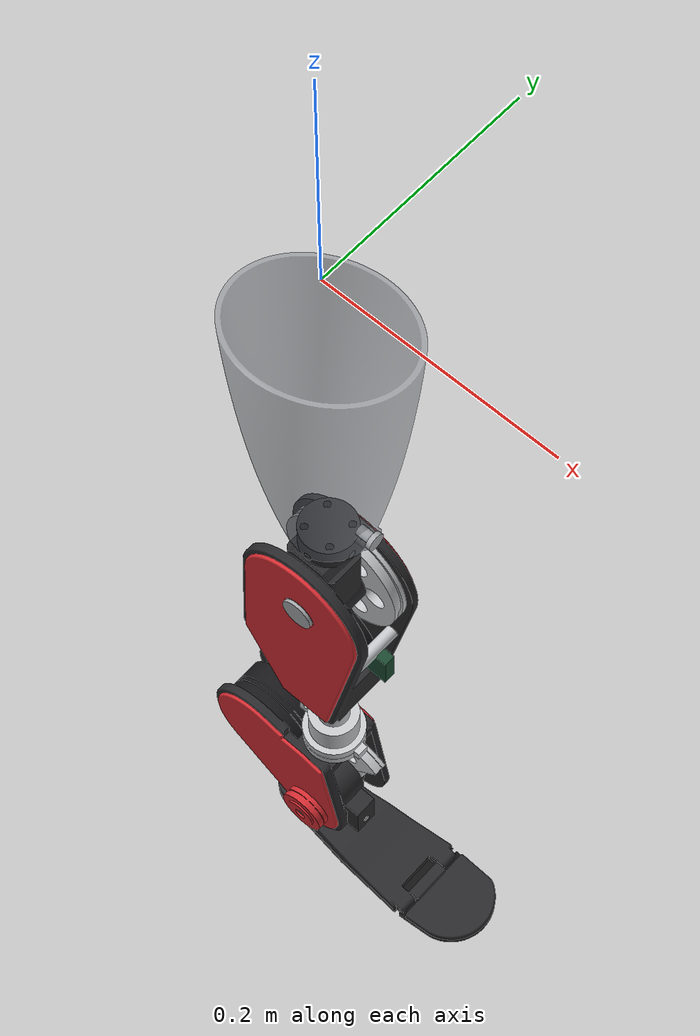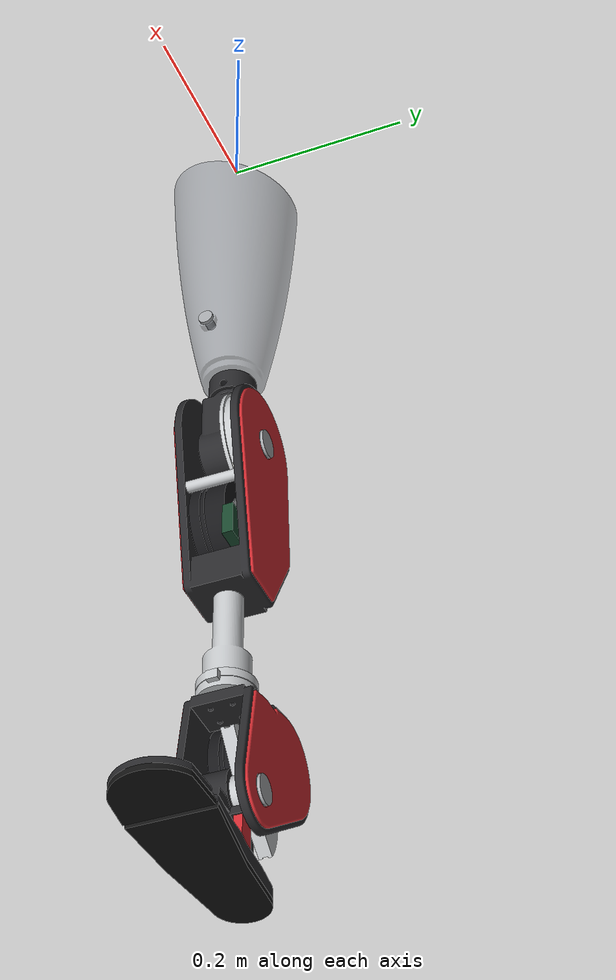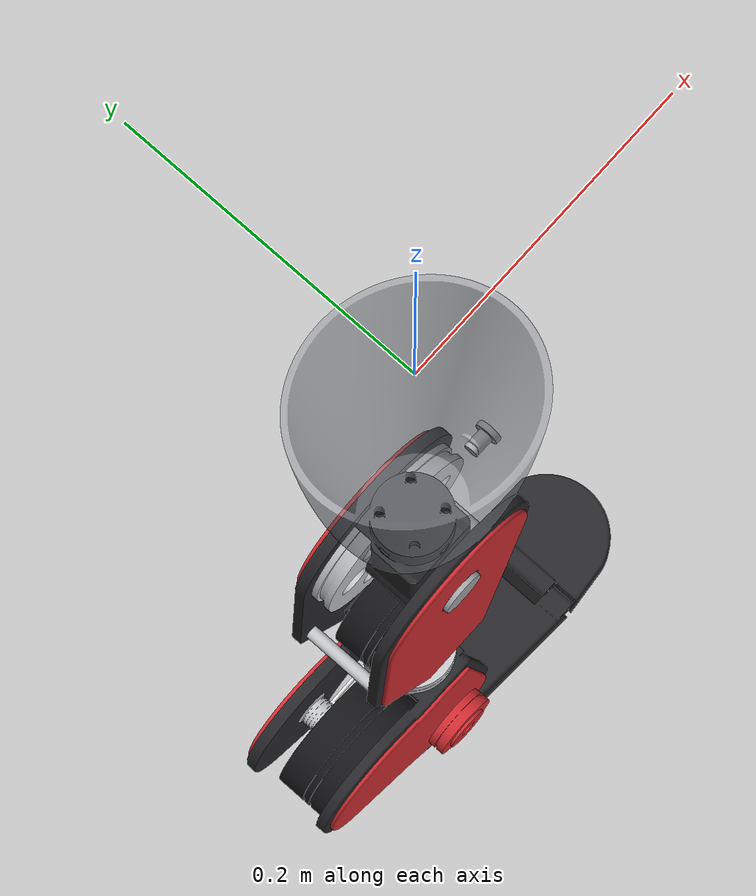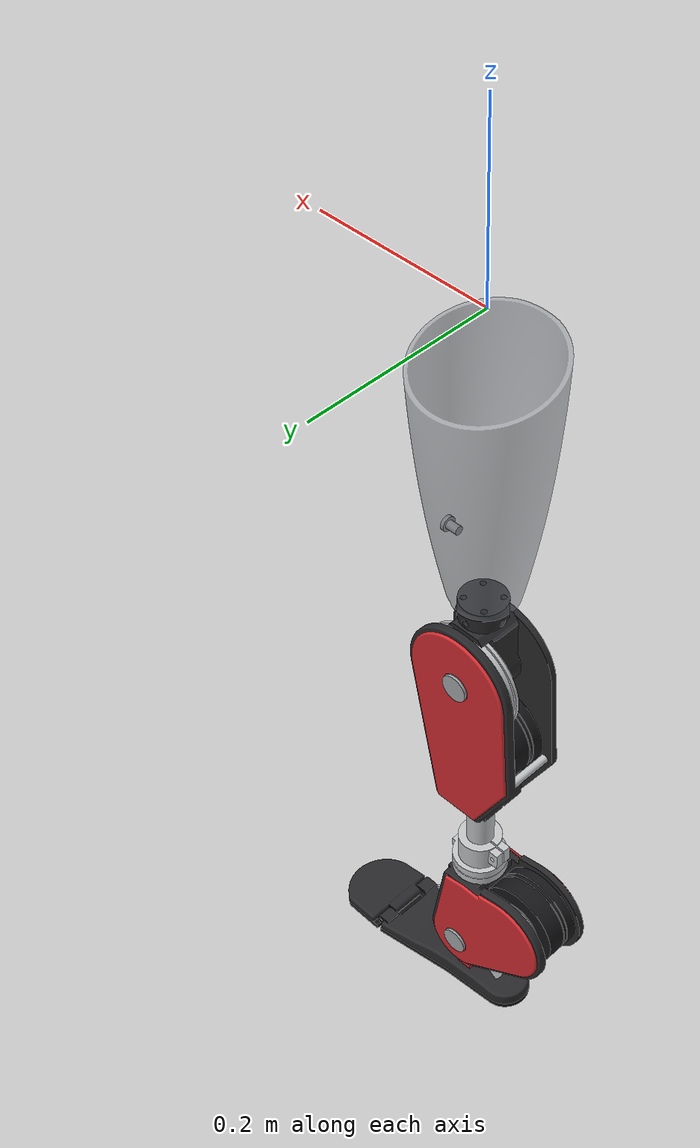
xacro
<?xml version="1.0"?>
<robot name="capleg" xmlns:xacro="http://www.ros.org/wiki/xacro">
  <xacro:arg name="config" default="transfemoral"/>
  <xacro:arg name="rig" default="false"/>
  <xacro:arg name="sim" default="none"/>
  <xacro:arg name="controllers_file" default=""/>
  <xacro:property name="config" value="$(arg config)"/>

  <xacro:include filename="$(find capleg_description)/urdf/capleg_macro.xacro"/>
  <xacro:include filename="$(find capleg_description)/urdf/rig.xacro"/>
  <xacro:include filename="$(find capleg_description)/urdf/capleg.ros2_control.xacro"/>
  <xacro:include filename="$(find capleg_description)/urdf/capleg.gazebo.xacro"/>

  <xacro:capleg config="${config}"/>
  <xacro:if value="$(arg rig)">
    <xacro:capleg_rig config="${config}"/>
  </xacro:if>
  <xacro:if value="${'$(arg sim)' == 'gazebo'}">
    <xacro:capleg_ros2_control config="${config}" rig="$(arg rig)"/>
    <xacro:capleg_gazebo controllers_file="$(arg controllers_file)" config="${config}"/>
  </xacro:if>
</robot>

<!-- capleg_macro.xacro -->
<!-- CapLeg robot description macro. GENERATED by tools/build_sim_models.py from the Fusion 360 export. -->
<!-- Frames: +X anterior, +Y medial (right leg), +Z up. Joint signs: knee +flexion, ankle_pitch +dorsiflexion,
     ankle_roll +inversion, toe +dorsiflexion. -->
<robot xmlns:xacro="http://www.ros.org/wiki/xacro">
  <xacro:macro name="capleg" params="config">
    <material name="capleg_accent_red"><color rgba="0.827 0.173 0.196 1"/></material>
    <material name="capleg_graphite"><color rgba="0.16 0.16 0.17 1"/></material>
    <material name="capleg_smoke_clear"><color rgba="0.55 0.57 0.6 0.55"/></material>
    <material name="capleg_aluminium"><color rgba="0.77 0.78 0.79 1"/></material>
    <material name="capleg_steel"><color rgba="0.65 0.66 0.67 1"/></material>
    <material name="capleg_actuator_black"><color rgba="0.09 0.09 0.1 1"/></material>
    <material name="capleg_tpu_black"><color rgba="0.07 0.07 0.07 1"/></material>
    <material name="capleg_cable_white"><color rgba="0.92 0.92 0.89 1"/></material>
    <material name="capleg_pcb_green"><color rgba="0.1 0.28 0.18 1"/></material>
    <xacro:if value="${config == 'transfemoral'}">
    <link name="capleg_thigh">
      <inertial>
        <origin xyz="0.000277346 0.00328051 -0.308919" rpy="0 0 0"/>
        <mass value="1.15949"/>
        <inertia ixx="0.0197502" ixy="4.39148e-06" ixz="-9.15477e-06" iyy="0.0199917" iyz="0.000986456" izz="0.00221088"/>
      </inertial>
      <visual>
        <origin xyz="0 0 0" rpy="0 0 0"/>
        <geometry><mesh filename="package://capleg_description/meshes/visual/capleg_thigh__aluminium.stl"/></geometry>
        <material name="capleg_aluminium"/>
      </visual>
      <visual>
        <origin xyz="0 0 0" rpy="0 0 0"/>
        <geometry><mesh filename="package://capleg_description/meshes/visual/capleg_thigh__graphite.stl"/></geometry>
        <material name="capleg_graphite"/>
      </visual>
      <visual>
        <origin xyz="0 0 0" rpy="0 0 0"/>
        <geometry><mesh filename="package://capleg_description/meshes/visual/capleg_thigh__smoke_clear.stl"/></geometry>
        <material name="capleg_smoke_clear"/>
      </visual>
      <visual>
        <origin xyz="0 0 0" rpy="0 0 0"/>
        <geometry><mesh filename="package://capleg_description/meshes/visual/capleg_thigh__steel.stl"/></geometry>
        <material name="capleg_steel"/>
      </visual>
      <collision>
        <origin xyz="0 0 -0.18" rpy="0 3.14159 0"/>
        <geometry><cylinder radius="0.062" length="0.24"/></geometry>
      </collision>
    </link>
    <link name="capleg_thigh_imu_link"/>
    <joint name="capleg_thigh_imu_joint" type="fixed">
      <parent link="capleg_thigh"/>
      <child link="capleg_thigh_imu_link"/>
      <origin xyz="0 -0.02 -0.396" rpy="0 0 0"/>
    </joint>
    <joint name="knee" type="revolute">
      <parent link="capleg_thigh"/>
      <child link="capleg_shank"/>
      <origin xyz="0 0 -0.43" rpy="0 0 0"/>
      <axis xyz="0 1 0"/>
      <limit lower="-0.0872665" upper="2.0944" effort="102.34" velocity="12.45"/>
      <dynamics damping="0.2" friction="0.8"/>
    </joint>
    </xacro:if>
    <xacro:if value="${config == 'transfemoral'}">
    <link name="capleg_shank">
      <inertial>
        <origin xyz="-0.00216551 -0.000255995 -0.0961228" rpy="0 0 0"/>
        <mass value="1.37447"/>
        <inertia ixx="0.00712062" ixy="-8.98504e-05" ixz="9.62482e-05" iyy="0.00746095" iyz="8.08815e-05" izz="0.00189131"/>
      </inertial>
      <xacro:if value="${config == 'transfemoral'}">
      <visual>
        <origin xyz="0 0 0" rpy="0 0 0"/>
        <geometry><mesh filename="package://capleg_description/meshes/visual/capleg_shank_knee__accent_red.stl"/></geometry>
        <material name="capleg_accent_red"/>
      </visual>
      </xacro:if>
      <xacro:if value="${config == 'transfemoral'}">
      <visual>
        <origin xyz="0 0 0" rpy="0 0 0"/>
        <geometry><mesh filename="package://capleg_description/meshes/visual/capleg_shank_knee__actuator_black.stl"/></geometry>
        <material name="capleg_actuator_black"/>
      </visual>
      </xacro:if>
      <xacro:if value="${config == 'transfemoral'}">
      <visual>
        <origin xyz="0 0 0" rpy="0 0 0"/>
        <geometry><mesh filename="package://capleg_description/meshes/visual/capleg_shank_knee__aluminium.stl"/></geometry>
        <material name="capleg_aluminium"/>
      </visual>
      </xacro:if>
      <xacro:if value="${config == 'transfemoral'}">
      <visual>
        <origin xyz="0 0 0" rpy="0 0 0"/>
        <geometry><mesh filename="package://capleg_description/meshes/visual/capleg_shank_knee__cable_white.stl"/></geometry>
        <material name="capleg_cable_white"/>
      </visual>
      </xacro:if>
      <xacro:if value="${config == 'transfemoral'}">
      <visual>
        <origin xyz="0 0 0" rpy="0 0 0"/>
        <geometry><mesh filename="package://capleg_description/meshes/visual/capleg_shank_knee__graphite.stl"/></geometry>
        <material name="capleg_graphite"/>
      </visual>
      </xacro:if>
      <xacro:if value="${config == 'transfemoral'}">
      <visual>
        <origin xyz="0 0 0" rpy="0 0 0"/>
        <geometry><mesh filename="package://capleg_description/meshes/visual/capleg_shank_knee__pcb_green.stl"/></geometry>
        <material name="capleg_pcb_green"/>
      </visual>
      </xacro:if>
      <xacro:if value="${config == 'transfemoral'}">
      <visual>
        <origin xyz="0 0 0" rpy="0 0 0"/>
        <geometry><mesh filename="package://capleg_description/meshes/visual/capleg_shank_knee__steel.stl"/></geometry>
        <material name="capleg_steel"/>
      </visual>
      </xacro:if>
      <visual>
        <origin xyz="0 0 0" rpy="0 0 0"/>
        <geometry><mesh filename="package://capleg_description/meshes/visual/capleg_shank_pylon__aluminium.stl"/></geometry>
        <material name="capleg_aluminium"/>
      </visual>
      <collision>
        <origin xyz="-0.006 0 -0.1025" rpy="0 3.14159 0"/>
        <geometry><cylinder radius="0.058" length="0.125"/></geometry>
      </collision>
    </link>
    </xacro:if>
    <xacro:unless value="${config == 'transfemoral'}">
    <link name="capleg_shank">
      <inertial>
        <origin xyz="-0.000773075 7.58214e-11 -0.240462" rpy="0 0 0"/>
        <mass value="0.0943854"/>
        <inertia ixx="0.000175991" ixy="1.49978e-13" ixz="-2.52014e-06" iyy="0.000178016" iyz="3.34857e-13" izz="2.56281e-05"/>
      </inertial>
      <visual>
        <origin xyz="0 0 0" rpy="0 0 0"/>
        <geometry><mesh filename="package://capleg_description/meshes/visual/capleg_shank_pylon__aluminium.stl"/></geometry>
        <material name="capleg_aluminium"/>
      </visual>
      <collision>
        <origin xyz="-0.006 0 -0.1025" rpy="0 3.14159 0"/>
        <geometry><cylinder radius="0.058" length="0.125"/></geometry>
      </collision>
    </link>
    </xacro:unless>
    <link name="capleg_shank_imu_link"/>
    <joint name="capleg_shank_imu_joint" type="fixed">
      <parent link="capleg_shank"/>
      <child link="capleg_shank_imu_link"/>
      <origin xyz="0.03 0.019 -0.13" rpy="0 0 0"/>
    </joint>
    <link name="capleg_ankle_module">
      <inertial>
        <origin xyz="-0.0392061 -0.00586419 -0.0537836" rpy="0 0 0"/>
        <mass value="1.21217"/>
        <inertia ixx="0.00277873" ixy="9.89576e-05" ixz="0.000137555" iyy="0.00395443" iyz="-0.000269649" izz="0.00260406"/>
      </inertial>
      <visual>
        <origin xyz="0 0 0" rpy="0 0 0"/>
        <geometry><mesh filename="package://capleg_description/meshes/visual/capleg_ankle_module__accent_red.stl"/></geometry>
        <material name="capleg_accent_red"/>
      </visual>
      <visual>
        <origin xyz="0 0 0" rpy="0 0 0"/>
        <geometry><mesh filename="package://capleg_description/meshes/visual/capleg_ankle_module__actuator_black.stl"/></geometry>
        <material name="capleg_actuator_black"/>
      </visual>
      <visual>
        <origin xyz="0 0 0" rpy="0 0 0"/>
        <geometry><mesh filename="package://capleg_description/meshes/visual/capleg_ankle_module__aluminium.stl"/></geometry>
        <material name="capleg_aluminium"/>
      </visual>
      <visual>
        <origin xyz="0 0 0" rpy="0 0 0"/>
        <geometry><mesh filename="package://capleg_description/meshes/visual/capleg_ankle_module__cable_white.stl"/></geometry>
        <material name="capleg_cable_white"/>
      </visual>
      <visual>
        <origin xyz="0 0 0" rpy="0 0 0"/>
        <geometry><mesh filename="package://capleg_description/meshes/visual/capleg_ankle_module__graphite.stl"/></geometry>
        <material name="capleg_graphite"/>
      </visual>
      <visual>
        <origin xyz="0 0 0" rpy="0 0 0"/>
        <geometry><mesh filename="package://capleg_description/meshes/visual/capleg_ankle_module__steel.stl"/></geometry>
        <material name="capleg_steel"/>
      </visual>
      <collision>
        <origin xyz="-0.04 0 -0.0575" rpy="0 -2.28963 0"/>
        <geometry><cylinder radius="0.05" length="0.0531507"/></geometry>
      </collision>
    </link>
    <joint name="load_cell_joint" type="fixed">
      <parent link="capleg_shank"/>
      <child link="capleg_ankle_module"/>
      <origin xyz="0 0 -0.303" rpy="0 0 0"/>
    </joint>
    <link name="capleg_talus">
      <inertial>
        <origin xyz="-0.00869981 0.00798306 0.00319758" rpy="0 0 0"/>
        <mass value="0.406916"/>
        <inertia ixx="0.000425524" ixy="4.00308e-05" ixz="1.81778e-06" iyy="0.000517819" iyz="-6.08975e-05" izz="0.000343039"/>
      </inertial>
      <visual>
        <origin xyz="0 0 0" rpy="0 0 0"/>
        <geometry><mesh filename="package://capleg_description/meshes/visual/capleg_talus__aluminium.stl"/></geometry>
        <material name="capleg_aluminium"/>
      </visual>
      <visual>
        <origin xyz="0 0 0" rpy="0 0 0"/>
        <geometry><mesh filename="package://capleg_description/meshes/visual/capleg_talus__graphite.stl"/></geometry>
        <material name="capleg_graphite"/>
      </visual>
      <visual>
        <origin xyz="0 0 0" rpy="0 0 0"/>
        <geometry><mesh filename="package://capleg_description/meshes/visual/capleg_talus__steel.stl"/></geometry>
        <material name="capleg_steel"/>
      </visual>
    </link>
    <joint name="ankle_pitch" type="revolute">
      <parent link="capleg_ankle_module"/>
      <child link="capleg_talus"/>
      <origin xyz="0 0 -0.117" rpy="0 0 0"/>
      <axis xyz="0 -1 0"/>
      <limit lower="-0.349066" upper="0.261799" effort="176.5" velocity="11.47"/>
      <dynamics damping="0.2" friction="0.8"/>
    </joint>
    <link name="capleg_foot">
      <inertial>
        <origin xyz="0.0263287 -0.000351722 -0.0279072" rpy="0 0 0"/>
        <mass value="0.27316"/>
        <inertia ixx="0.000161826" ixy="-4.11363e-06" ixz="5.82838e-05" iyy="0.000716938" iyz="-4.17041e-07" izz="0.000753185"/>
      </inertial>
      <visual>
        <origin xyz="0 0 0" rpy="0 0 0"/>
        <geometry><mesh filename="package://capleg_description/meshes/visual/capleg_foot__accent_red.stl"/></geometry>
        <material name="capleg_accent_red"/>
      </visual>
      <visual>
        <origin xyz="0 0 0" rpy="0 0 0"/>
        <geometry><mesh filename="package://capleg_description/meshes/visual/capleg_foot__graphite.stl"/></geometry>
        <material name="capleg_graphite"/>
      </visual>
      <visual>
        <origin xyz="0 0 0" rpy="0 0 0"/>
        <geometry><mesh filename="package://capleg_description/meshes/visual/capleg_foot__steel.stl"/></geometry>
        <material name="capleg_steel"/>
      </visual>
      <visual>
        <origin xyz="0 0 0" rpy="0 0 0"/>
        <geometry><mesh filename="package://capleg_description/meshes/visual/capleg_foot__tpu_black.stl"/></geometry>
        <material name="capleg_tpu_black"/>
      </visual>
      <collision>
        <origin xyz="-0.052 0.018 -0.028" rpy="0 0 0"/>
        <geometry><sphere radius="0.018"/></geometry>
      </collision>
      <collision>
        <origin xyz="-0.052 -0.018 -0.028" rpy="0 0 0"/>
        <geometry><sphere radius="0.018"/></geometry>
      </collision>
      <collision>
        <origin xyz="0.104 0.03 -0.034" rpy="0 0 0"/>
        <geometry><sphere radius="0.012"/></geometry>
      </collision>
      <collision>
        <origin xyz="0.104 -0.026 -0.034" rpy="0 0 0"/>
        <geometry><sphere radius="0.012"/></geometry>
      </collision>
      <collision>
        <origin xyz="0.03 -0.03 -0.036" rpy="0 0 0"/>
        <geometry><sphere radius="0.01"/></geometry>
      </collision>
    </link>
    <joint name="ankle_roll" type="revolute">
      <parent link="capleg_talus"/>
      <child link="capleg_foot"/>
      <origin xyz="0 0 -0.044" rpy="0 0 0"/>
      <axis xyz="1 0 0"/>
      <limit lower="-0.174533" upper="0.174533" effort="60" velocity="10"/>
      <dynamics damping="0.5" friction="0.05"/>
    </joint>
    <link name="capleg_foot_imu_link"/>
    <joint name="capleg_foot_imu_joint" type="fixed">
      <parent link="capleg_foot"/>
      <child link="capleg_foot_imu_link"/>
      <origin xyz="0.04 0 -0.031" rpy="0 0 0"/>
    </joint>
    <link name="capleg_heel_link"/>
    <joint name="capleg_heel_joint" type="fixed">
      <parent link="capleg_foot"/>
      <child link="capleg_heel_link"/>
      <origin xyz="-0.052 0 -0.046" rpy="0 0 0"/>
    </joint>
    <link name="capleg_ball_link"/>
    <joint name="capleg_ball_joint" type="fixed">
      <parent link="capleg_foot"/>
      <child link="capleg_ball_link"/>
      <origin xyz="0.104 0 -0.046" rpy="0 0 0"/>
    </joint>
    <link name="capleg_toe">
      <inertial>
        <origin xyz="0.0326931 0.00354203 -0.00382029" rpy="0 0 0"/>
        <mass value="0.0653597"/>
        <inertia ixx="3.35e-05" ixy="-1.72005e-06" ixz="2.69176e-07" iyy="2.57859e-05" iyz="5.28456e-08" izz="5.71212e-05"/>
      </inertial>
      <visual>
        <origin xyz="0 0 0" rpy="0 0 0"/>
        <geometry><mesh filename="package://capleg_description/meshes/visual/capleg_toe__graphite.stl"/></geometry>
        <material name="capleg_graphite"/>
      </visual>
      <visual>
        <origin xyz="0 0 0" rpy="0 0 0"/>
        <geometry><mesh filename="package://capleg_description/meshes/visual/capleg_toe__tpu_black.stl"/></geometry>
        <material name="capleg_tpu_black"/>
      </visual>
      <collision>
        <origin xyz="0.03 0.022 -0.0025" rpy="0 0 0"/>
        <geometry><sphere radius="0.009"/></geometry>
      </collision>
      <collision>
        <origin xyz="0.03 -0.02 -0.0025" rpy="0 0 0"/>
        <geometry><sphere radius="0.009"/></geometry>
      </collision>
      <collision>
        <origin xyz="0.06 0.012 -0.0025" rpy="0 0 0"/>
        <geometry><sphere radius="0.009"/></geometry>
      </collision>
    </link>
    <joint name="toe" type="revolute">
      <parent link="capleg_foot"/>
      <child link="capleg_toe"/>
      <origin xyz="0.12 0 -0.0345" rpy="0 0 0"/>
      <axis xyz="0 -1 0"/>
      <limit lower="0" upper="0.698132" effort="35" velocity="15"/>
      <dynamics damping="0.05" friction="0.02"/>
    </joint>
    <link name="capleg_toe_tip_link"/>
    <joint name="capleg_toe_tip_joint" type="fixed">
      <parent link="capleg_toe"/>
      <child link="capleg_toe_tip_link"/>
      <origin xyz="0.07 0 -0.0115" rpy="0 0 0"/>
    </joint>
  </xacro:macro>
</robot>
